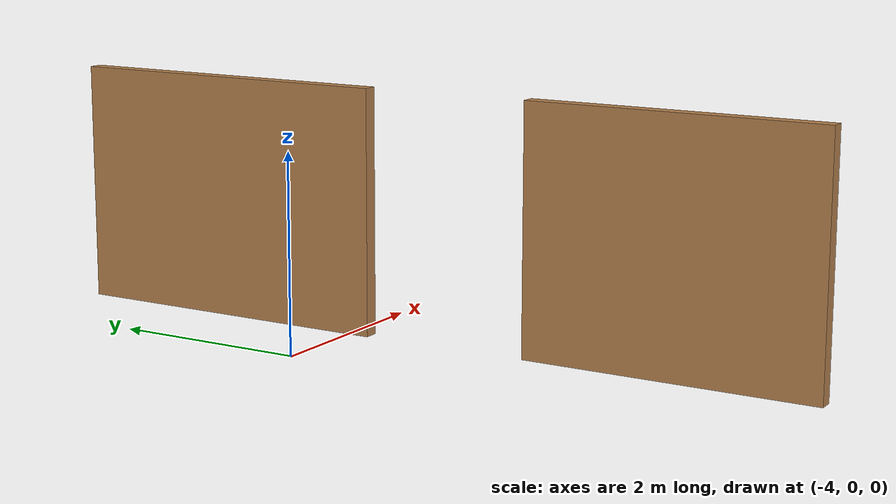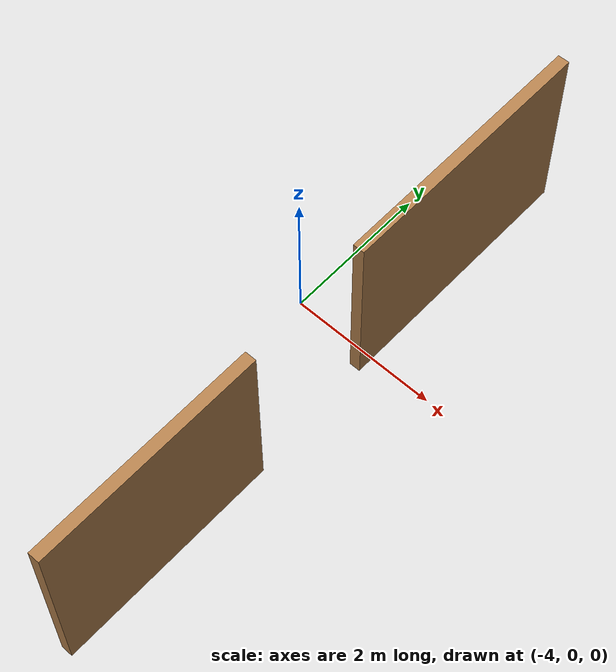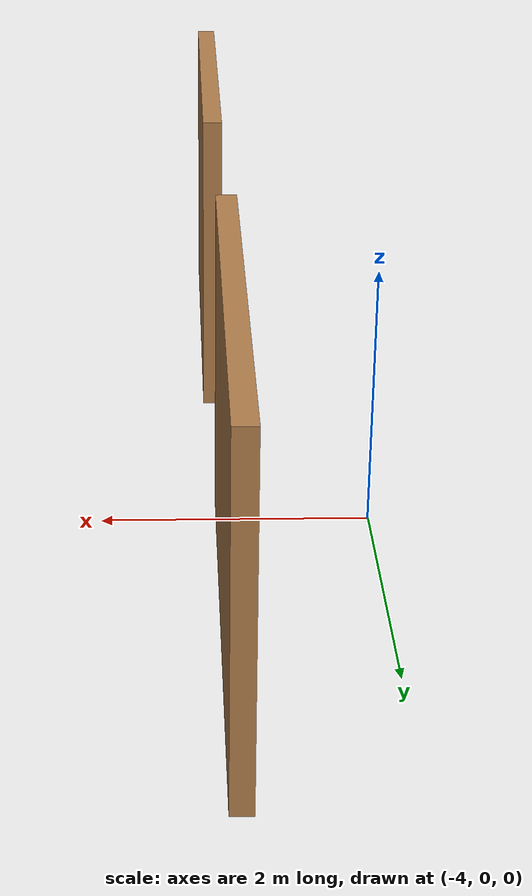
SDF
<?xml version='1.0'?>
<sdf version='1.7'>
  <model name='my_house_v2'>
    <pose>-1.50259 -0.835072 0 0 -0 0</pose>
    <link name='Wall_5'>
      <collision name='Wall_5_Collision'>
        <geometry>
          <box>
            <size>3 0.15 2.5</size>
          </box>
        </geometry>
        <pose>0 0 1.25 0 -0 0</pose>
      </collision>
      <visual name='Wall_5_Visual'>
        <pose>0 0 1.25 0 -0 0</pose>
        <geometry>
          <box>
            <size>3 0.15 2.5</size>
          </box>
        </geometry>
        <material>
          <script>
            <uri>file://media/materials/scripts/gazebo.material</uri>
            <name>Gazebo/Wood</name>
          </script>
          <ambient>1 1 1 1</ambient>
        </material>
        <meta>
          <layer>0</layer>
        </meta>
      </visual>
      <pose>-1.36641 -2.608 0 0 -0 -1.5708</pose>
    </link>
    <link name='Wall_7'>
      <collision name='Wall_7_Collision'>
        <geometry>
          <box>
            <size>3.5 0.15 2.5</size>
          </box>
        </geometry>
        <pose>0 0 1.25 0 -0 0</pose>
      </collision>
      <visual name='Wall_7_Visual'>
        <pose>0 0 1.25 0 -0 0</pose>
        <geometry>
          <box>
            <size>3.5 0.15 2.5</size>
          </box>
        </geometry>
        <material>
          <script>
            <uri>file://media/materials/scripts/gazebo.material</uri>
            <name>Gazebo/Wood</name>
          </script>
          <ambient>1 1 1 1</ambient>
        </material>
        <meta>
          <layer>0</layer>
        </meta>
      </visual>
      <pose>-1.42759 2.358 0 0 -0 1.5708</pose>
    </link>
    <static>1</static>
  </model>

  <model>
    <name>MiniMockCharger</name>
    <version>1.0</version>
    <sdf version="1.6">model.sdf</sdf>

    <author>
      <name>YouLiang/EnricoMoro</name>
      <email></email>
    </author>

    <description>
      Mini Mock Charging Station
    </description>
  </model>
</sdf>
